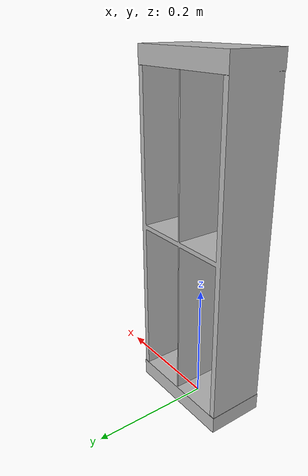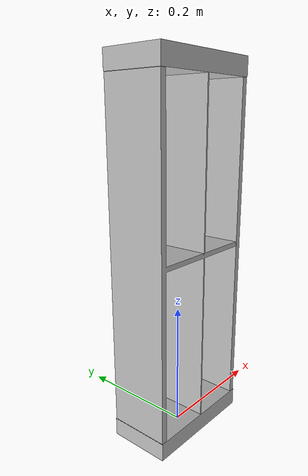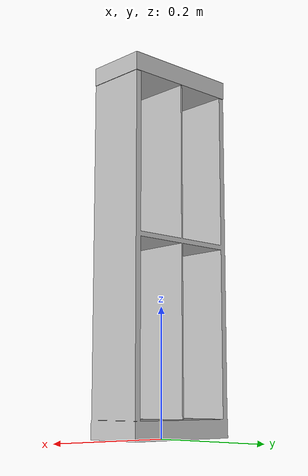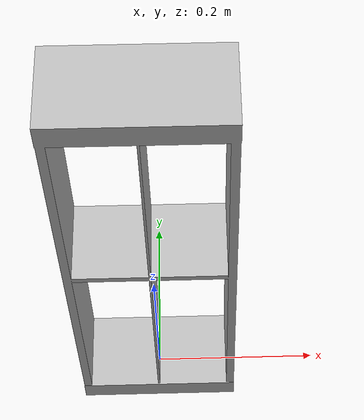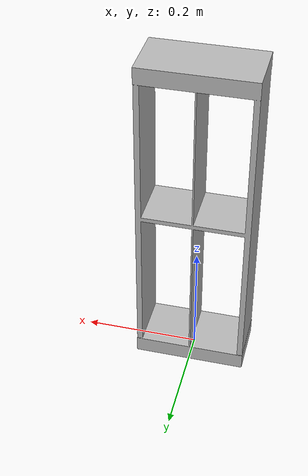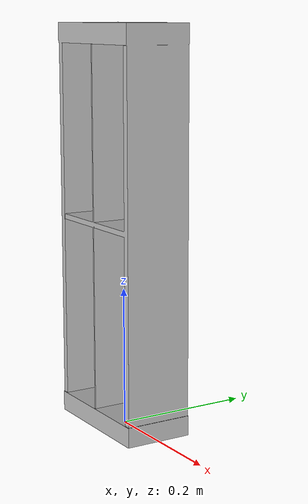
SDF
<?xml version='1.0' encoding='utf-8'?>
<sdf version="1.6">
  <model name="SquareShelf">
    <static>true</static>
    <link name="body">
      <pose>0 0 0 0 0 0</pose>

      <visual name="visual">
        <geometry>
          <mesh>
            <uri>model://SquareShelf/meshes/SquareShelf.obj</uri>
            <scale>0.25 0.25 0.75</scale>
          </mesh>
        </geometry>
      </visual>

      <collision name="collision">
        <geometry>
          <mesh>
            <uri>model://SquareShelf/meshes/SquareShelf_Col.obj</uri>
            <scale>0.25 0.25 0.75</scale>
          </mesh>
        </geometry>
      </collision>

    </link>
  </model>
</sdf>
